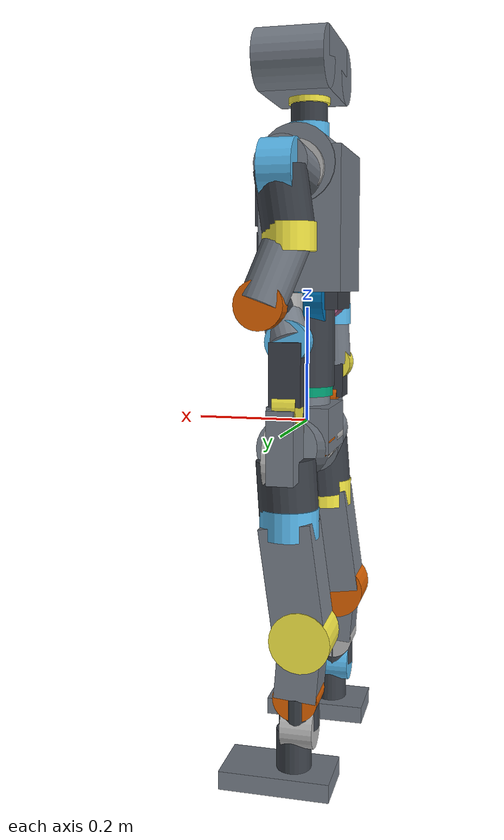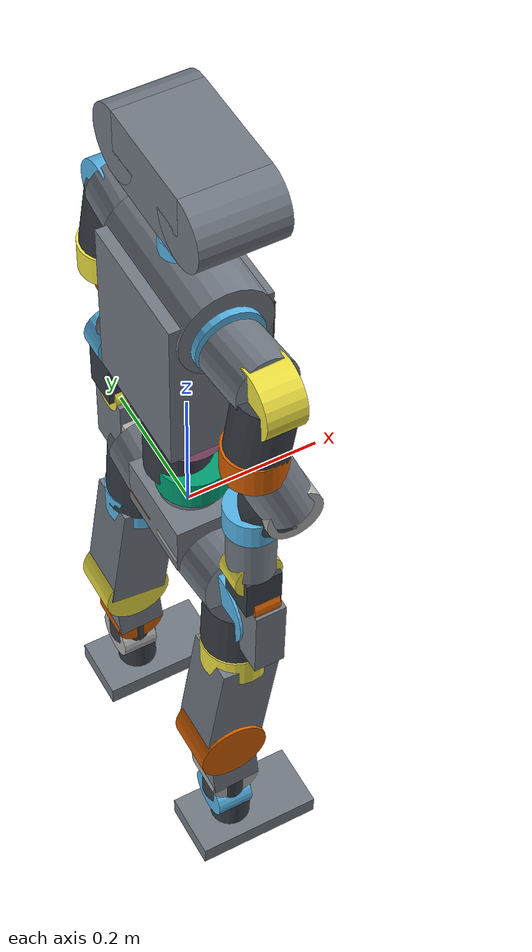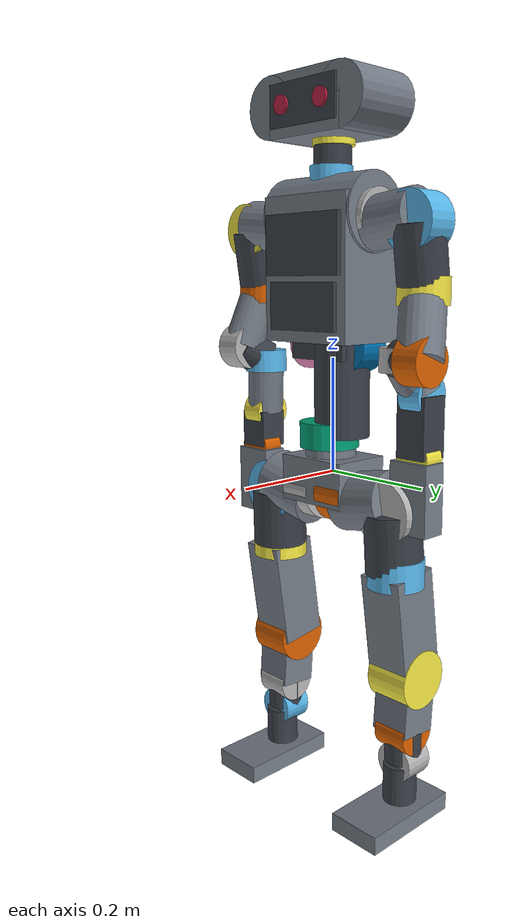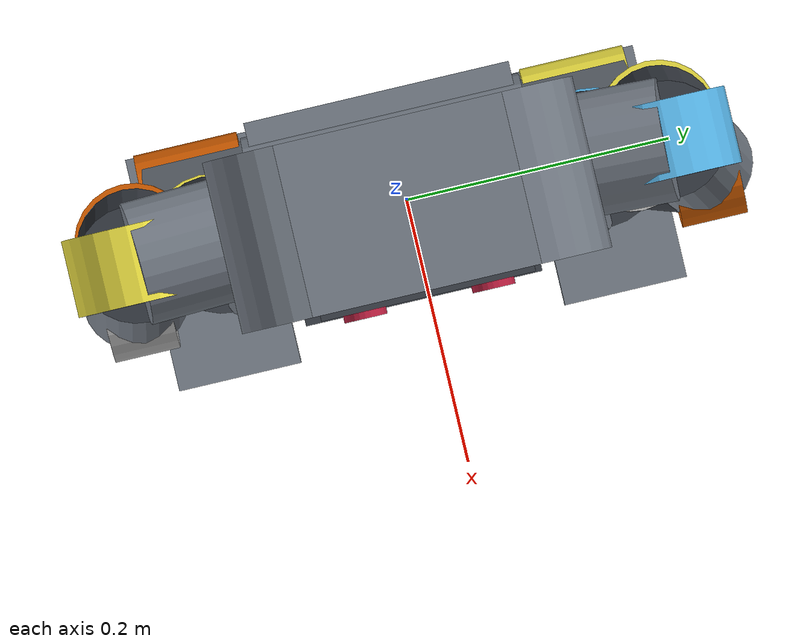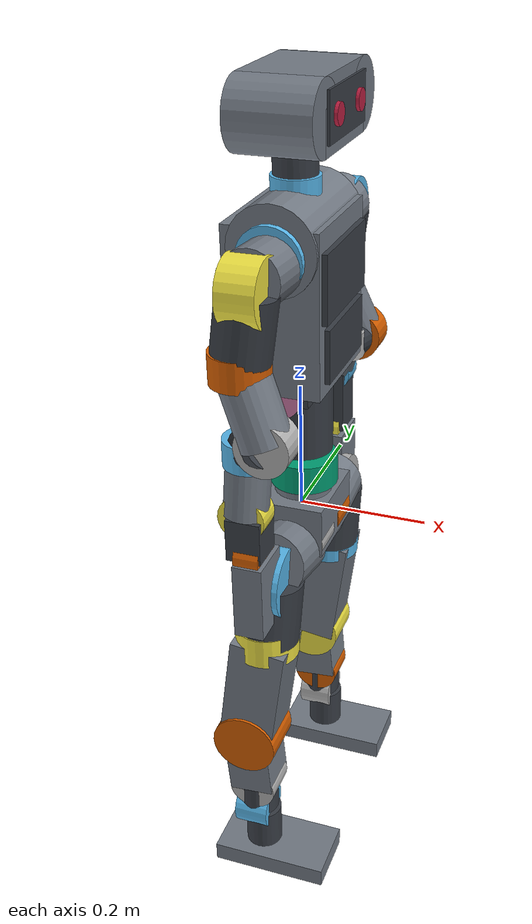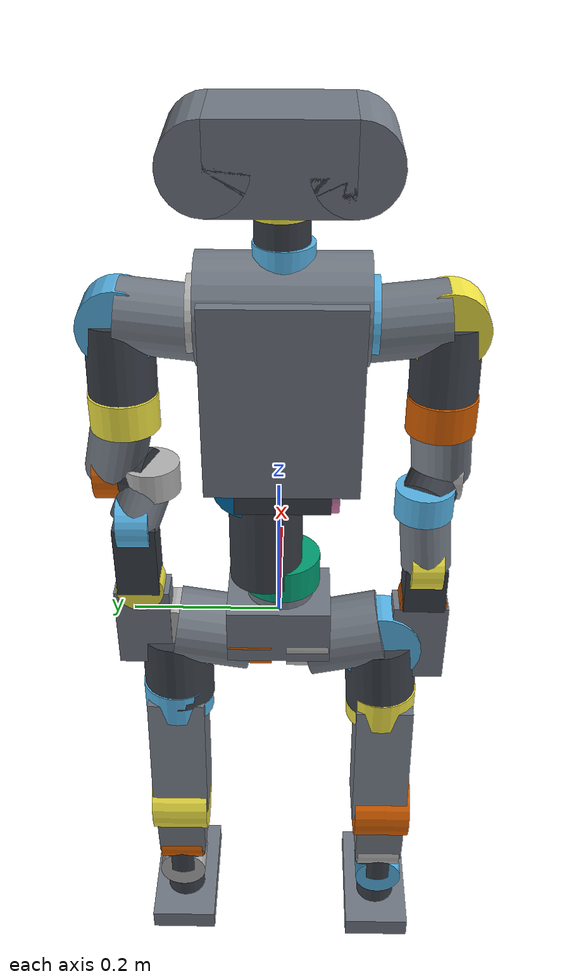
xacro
<?xml version="1.0"?>
<robot xmlns:xacro="http://www.ros.org/wiki/xacro" name="full_assmb">

  <mujoco>
    <compiler strippath="false" discardvisual="false" />
  </mujoco>

  <!-- Hardware manifest and ros2_control macros: urdf/ros2_control_macros.xacro.
       The launch file generates the manifest from config/joints.yaml. -->
  <xacro:include filename="ros2_control_macros.xacro"/>

  <!-- ==================== JOINT NAMING ==================== -->
  <xacro:property name="actuated_joint_names" value="${['left_shoulder_pitch', 'left_shoulder_roll', 'left_shoulder_yaw', 'left_elbow', 'left_forearm_yaw', 'left_wrist_pitch', 'left_wrist_roll', 'right_shoulder_pitch', 'right_shoulder_roll', 'right_shoulder_yaw', 'right_elbow', 'right_forearm_yaw', 'right_wrist_pitch', 'right_wrist_roll', 'left_hip_pitch', 'left_hip_roll', 'left_hip_yaw', 'left_knee', 'left_ankle_pitch', 'left_ankle_roll', 'right_hip_pitch', 'right_hip_roll', 'right_hip_yaw', 'right_knee', 'right_ankle_pitch', 'right_ankle_roll', 'torso_yaw', 'torso_roll', 'torso_pitch', 'head_yaw', 'head_pitch']}"/>

  <!-- ==================== MATERIALS ==================== -->
  <material name="cad_aluminum"><color rgba="0.68 0.70 0.73 1.0"/></material>
  <material name="shell_dark"><color rgba="0.45 0.48 0.52 1.0"/></material>
  <material name="arm_dark"><color rgba="0.22 0.24 0.27 1.0"/></material>
  <material name="accent_red"><color rgba="0.72 0.12 0.25 1.0"/></material>

  <!-- Macro that colors active EtherCAT joints red and mock joints dark gray -->
  <xacro:macro name="actuator_visual_hub" params="parent_link radius length rpy joint_idx">
    <link name="${parent_link}_hub">
      <visual>
        <origin xyz="0 0 0" rpy="${rpy}"/>
        <geometry><cylinder radius="${radius}" length="${length}"/></geometry>
        <material name="${'accent_red' if actuated_joint_names[int(joint_idx) - 1] in hw_names else 'arm_dark'}"/>
      </visual>
    </link>
    <joint name="${parent_link}_hub_fixed" type="fixed">
      <parent link="${parent_link}"/>
      <child link="${parent_link}_hub"/>
      <origin xyz="0 0 0" rpy="0 0 0"/>
    </joint>
  </xacro:macro>

  <!-- ==================== LINK: pelvis ==================== -->
  <link name="pelvis">
    <inertial>
      <origin xyz="0.00135144019 -0.000867692327 -0.0218788488" rpy="0 0 0"/>
      <mass value="3.3441746"/>
      <inertia ixx="0.0099193949" ixy="9.93110242e-05" ixz="1.02298577e-05" iyy="0.00708947808" iyz="-2.20920691e-05" izz="0.00877560221"/>
    </inertial>
    <visual>
      <origin xyz="0.002 0 -0.01" rpy="0 0 0"/>
      <geometry><box size="0.11 0.14 0.08"/></geometry>
      <material name="shell_dark"/>
    </visual>
    <visual>
      <origin xyz="0.004 -0.002 0.045" rpy="0 0 0"/>
      <geometry><cylinder radius="0.045" length="0.055"/></geometry>
      <material name="shell_dark"/>
    </visual>
    <collision>
      <origin xyz="0.002 0 -0.01" rpy="0 0 0"/>
      <geometry><box size="0.11 0.14 0.08"/></geometry>
    </collision>
  </link>

  <!-- ==================== LINK: torso_yaw_link (Joint 26) ==================== -->
  <link name="torso_yaw_link">
    <inertial>
      <origin xyz="0.0071610769 -0.000311877016 0.0253486518" rpy="0 0 0"/>
      <mass value="1.29787155"/>
      <inertia ixx="0.00271774684" ixy="4.63173551e-06" ixz="-0.000191215983" iyy="0.00294832905" iyz="1.43051997e-05" izz="0.00224623993"/>
    </inertial>
    <visual>
  <origin xyz="-0.0105 0.0204 0.0775" rpy="0 0 0"/>
  <geometry><cylinder radius="0.048" length="0.162"/></geometry>
  <material name="arm_dark"/>
</visual>
<collision>
  <origin xyz="-0.0105 0.0204 0.0775" rpy="0 0 0"/>
  <geometry><cylinder radius="0.048" length="0.162"/></geometry>
</collision>
  </link>
  <xacro:actuator_visual_hub parent_link="torso_yaw_link" radius="0.052" length="0.045" rpy="0 0 0" joint_idx="26"/>

  <!-- ==================== LINK: torso_roll_link (Joint 27) ==================== -->
  <link name="torso_roll_link">
    <inertial>
      <origin xyz="0.0050792044 -0.0249943939 0.0829546342" rpy="0 0 0"/>
      <mass value="2.1766299"/>
      <inertia ixx="0.0251292467" ixy="-0.000341218777" ixz="0.00207190506" iyy="0.0216832801" iyz="-0.00119301017" izz="0.0115066298"/>
    </inertial>
    <visual>
      <origin xyz="0 -0.043 0.02" rpy="0 0 0"/>
      <geometry><box size="0.10 0.12 0.09"/></geometry>
      <material name="arm_dark"/>
    </visual>
    <collision>
      <origin xyz="0 -0.043 0.02" rpy="0 0 0"/>
      <geometry><box size="0.10 0.12 0.09"/></geometry>
    </collision>
  </link>
  <xacro:actuator_visual_hub parent_link="torso_roll_link" radius="0.046" length="0.055" rpy="0 1.5708 0" joint_idx="27"/>

  <!-- ==================== LINK: torso (Joint 28) ==================== -->
  <link name="torso">
    <inertial>
      <origin xyz="0.00775933931 0.0230773074 0.106121937" rpy="0 0 0"/>
      <mass value="10.1109044"/>
      <inertia ixx="0.1160102" ixy="0.00145015298" ixz="0.00925740736" iyy="0.103810313" iyz="-0.00578745232" izz="0.0528225367"/>
    </inertial>
    <visual>
      <origin xyz="0.010 0.0439 0.125" rpy="0 0 0"/>
      <geometry><box size="0.14 0.19 0.24"/></geometry>
      <material name="shell_dark"/>
    </visual>
    <visual>
      <origin xyz="0.014 0.0439 0.215" rpy="1.5708 0 0"/>
      <geometry><cylinder radius="0.065" length="0.20"/></geometry>
      <material name="shell_dark"/>
    </visual>
    <visual>
      <origin xyz="0.0145 0.0430 0.255" rpy="0 0 0"/>
      <geometry><cylinder radius="0.035" length="0.06"/></geometry>
      <material name="shell_dark"/>
    </visual>
    <collision>
      <origin xyz="0.010 0.0439 0.125" rpy="0 0 0"/>
      <geometry><box size="0.14 0.19 0.24"/></geometry>
    </collision>
  </link>
  <xacro:actuator_visual_hub parent_link="torso" radius="0.046" length="0.055" rpy="1.5708 0 0" joint_idx="28"/>

  <link name="torso_trim_link">
    <visual>
      <origin xyz="0.082 0.0439 0.165" rpy="0 0 0"/>
      <geometry><box size="0.012 0.17 0.10"/></geometry>
      <material name="arm_dark"/>
    </visual>
    <visual>
      <origin xyz="0.082 0.0439 0.065" rpy="0 0 0"/>
      <geometry><box size="0.012 0.15 0.08"/></geometry>
      <material name="arm_dark"/>
    </visual>
  </link>
  <joint name="torso_trim_fixed" type="fixed">
    <parent link="torso"/>
    <child link="torso_trim_link"/>
    <origin xyz="0 0 0" rpy="0 0 0"/>
  </joint>

  <!-- ==================== LINK: head_yaw_link (Joint 29) ==================== -->
  <link name="head_yaw_link">
    <inertial>
      <origin xyz="-0.0212986181 -0.00220808899 -0.0019701607" rpy="0 0 0"/>
      <mass value="0.427035118"/>
      <inertia ixx="0.00143527713" ixy="2.24802452e-05" ixz="2.45759879e-05" iyy="0.000460095823" iyz="-1.50235836e-05" izz="0.00151713452"/>
    </inertial>
    <visual>
      <origin xyz="-0.001 0.002 0.0306" rpy="0 0 0"/>
      <geometry><cylinder radius="0.032" length="0.062"/></geometry>
      <material name="arm_dark"/>
    </visual>
    <collision>
      <origin xyz="-0.001 0.002 0.0306" rpy="0 0 0"/>
      <geometry><cylinder radius="0.032" length="0.062"/></geometry>
    </collision>
  </link>
  <xacro:actuator_visual_hub parent_link="head_yaw_link" radius="0.036" length="0.03" rpy="0 0 0" joint_idx="29"/>

  <!-- ==================== LINK: head (Joint 30) ==================== -->
  <link name="head">
    <inertial>
      <origin xyz="-0.00028095196 -0.00886941447 0.00973844358" rpy="0 0 0"/>
      <mass value="1.3791038"/>
      <inertia ixx="0.00689181604" ixy="8.02539198e-05" ixz="-0.000108831458" iyy="0.00855292846" iyz="1.00060424e-05" izz="0.00982967077"/>
    </inertial>
    <visual>
      <origin xyz="0.01 0 0.045" rpy="0 0 0"/>
      <geometry><box size="0.12 0.16 0.10"/></geometry>
      <material name="shell_dark"/>
    </visual>
    <visual>
      <origin xyz="0.01 0.08 0.045" rpy="0 1.5708 0"/>
      <geometry><cylinder radius="0.05" length="0.12"/></geometry>
      <material name="shell_dark"/>
    </visual>
    <visual>
      <origin xyz="0.01 -0.08 0.045" rpy="0 1.5708 0"/>
      <geometry><cylinder radius="0.05" length="0.12"/></geometry>
      <material name="shell_dark"/>
    </visual>
    <collision>
      <origin xyz="0.01 0 0.045" rpy="0 0 0"/>
      <geometry><box size="0.12 0.16 0.10"/></geometry>
    </collision>
  </link>
  <xacro:actuator_visual_hub parent_link="head" radius="0.036" length="0.03" rpy="0 0 0" joint_idx="30"/>

  <link name="head_visor_link">
    <visual>
      <origin xyz="0.071 0 0.045" rpy="0 0 0"/>
      <geometry><box size="0.006 0.15 0.068"/></geometry>
      <material name="arm_dark"/>
    </visual>
  </link>
  <joint name="head_visor_fixed" type="fixed">
    <parent link="head"/>
    <child link="head_visor_link"/>
    <origin xyz="0 0 0" rpy="0 0 0"/>
  </joint>

  <link name="head_eyes_link">
    <visual>
      <origin xyz="0.075 0.045 0.045" rpy="0 1.5708 0"/>
      <geometry><cylinder radius="0.015" length="0.008"/></geometry>
      <material name="accent_red"/>
    </visual>
    <visual>
      <origin xyz="0.075 -0.045 0.045" rpy="0 1.5708 0"/>
      <geometry><cylinder radius="0.015" length="0.008"/></geometry>
      <material name="accent_red"/>
    </visual>
  </link>
  <joint name="head_eyes_fixed" type="fixed">
    <parent link="head"/>
    <child link="head_eyes_link"/>
    <origin xyz="0 0 0" rpy="0 0 0"/>
  </joint>

  <!-- ==================== LEFT ARM LINKS ==================== -->

  <!-- LINK: left_shoulder_pitch_link (Joint 1) -->
  <link name="left_shoulder_pitch_link">
    <inertial>
      <origin xyz="8.11329397e-06 0.0134690594 0.00170145189" rpy="0 0 0"/>
      <mass value="0.919708281"/>
      <inertia ixx="0.00100827347" ixy="2.98577709e-09" ixz="2.40442334e-10" iyy="0.000921610803" iyz="-3.07703853e-05" izz="0.00102891925"/>
    </inertial>
    <visual>
      <origin xyz="0.0021 0.0544 -0.0053" rpy="1.667 0 -0.039"/>
      <geometry><cylinder radius="0.044" length="0.110"/></geometry>
      <material name="shell_dark"/>
    </visual>
    <collision>
      <origin xyz="0.0021 0.0544 -0.0053" rpy="1.667 0 -0.039"/>
      <geometry><cylinder radius="0.044" length="0.110"/></geometry>
    </collision>
  </link>
  <xacro:actuator_visual_hub parent_link="left_shoulder_pitch_link" radius="0.048" length="0.055" rpy="1.5708 0 0" joint_idx="1"/>

  <!-- LINK: left_shoulder_roll_link (Joint 2) -->
  <link name="left_shoulder_roll_link">
    <inertial>
      <origin xyz="-0.00475183471 -0.0100580619 -0.00881261853" rpy="0 0 0"/>
      <mass value="0.770586821"/>
      <inertia ixx="0.00121128237" ixy="8.63525933e-07" ixz="1.03437435e-05" iyy="0.00117995434" iyz="3.0758398e-05" izz="0.00119374891"/>
    </inertial>
    <visual>
      <origin xyz="-0.0076 0.0001 -0.0521" rpy="0 0.145 0"/>
      <geometry><cylinder radius="0.042" length="0.106"/></geometry>
      <material name="arm_dark"/>
    </visual>
    <collision>
      <origin xyz="-0.0076 0.0001 -0.0521" rpy="0 0.145 0"/>
      <geometry><cylinder radius="0.042" length="0.106"/></geometry>
    </collision>
  </link>
  <xacro:actuator_visual_hub parent_link="left_shoulder_roll_link" radius="0.048" length="0.055" rpy="0 1.5708 0" joint_idx="2"/>

  <!-- LINK: left_shoulder_yaw_link (Joint 3) -->
  <link name="left_shoulder_yaw_link">
    <inertial>
      <origin xyz="0.0192767007 -0.000125972824 -0.0397098337" rpy="0 0 0"/>
      <mass value="0.621805024"/>
      <inertia ixx="0.00189796511" ixy="-1.6383484e-09" ixz="9.05344671e-05" iyy="0.00212971261" iyz="5.26342737e-10" izz="0.00066640456"/>
    </inertial>
    <visual>
      <origin xyz="0.0192 0.0132 -0.0528" rpy="0.229 -0.348 0"/>
      <geometry><cylinder radius="0.038" length="0.115"/></geometry>
      <material name="shell_dark"/>
    </visual>
    <collision>
      <origin xyz="0.0192 0.0132 -0.0528" rpy="0.229 -0.348 0"/>
      <geometry><cylinder radius="0.038" length="0.115"/></geometry>
    </collision>
  </link>
  <xacro:actuator_visual_hub parent_link="left_shoulder_yaw_link" radius="0.043" length="0.045" rpy="0 0 0" joint_idx="3"/>

  <!-- LINK: left_elbow_link (Joint 4) -->
  <link name="left_elbow_link">
    <inertial>
      <origin xyz="-0.0019140819 -0.013235326 0.00586464447" rpy="0 0 0"/>
      <mass value="0.38394339"/>
      <inertia ixx="0.000243875" ixy="7.90016812e-06" ixz="5.43861518e-06" iyy="0.000245523455" iyz="-9.37205015e-06" izz="0.00018647038"/>
    </inertial>
    <visual>
      <origin xyz="-0.0083 -0.0244 -0.0007" rpy="-1.545 0 -0.327"/>
      <geometry><cylinder radius="0.035" length="0.052"/></geometry>
      <material name="arm_dark"/>
    </visual>
    <collision>
      <origin xyz="-0.0083 -0.0244 -0.0007" rpy="-1.545 0 -0.327"/>
      <geometry><cylinder radius="0.035" length="0.052"/></geometry>
    </collision>
  </link>
  <xacro:actuator_visual_hub parent_link="left_elbow_link" radius="0.040" length="0.048" rpy="1.5708 0 0" joint_idx="4"/>

  <!-- LINK: left_forearm_yaw_link (Joint 5) -->
  <link name="left_forearm_yaw_link">
    <inertial>
      <origin xyz="0.0105012778 0.00626218661 0.0029804655" rpy="0 0 0"/>
      <mass value="0.382858204"/>
      <inertia ixx="0.00024903944" ixy="2.1025687e-05" ixz="-9.30338073e-06" iyy="0.000238190065" iyz="3.28515867e-05" izz="0.000183474199"/>
    </inertial>
    <visual>
      <origin xyz="-0.0106 0.0116 -0.0283" rpy="0.366 0.359 0"/>
      <geometry><cylinder radius="0.033" length="0.065"/></geometry>
      <material name="shell_dark"/>
    </visual>
    <collision>
      <origin xyz="-0.0106 0.0116 -0.0283" rpy="0.366 0.359 0"/>
      <geometry><cylinder radius="0.033" length="0.065"/></geometry>
    </collision>
  </link>
  <xacro:actuator_visual_hub parent_link="left_forearm_yaw_link" radius="0.038" length="0.04" rpy="0 0 0" joint_idx="5"/>

  <!-- LINK: left_wrist_pitch_link (Joint 6) -->
  <link name="left_wrist_pitch_link">
    <inertial>
      <origin xyz="0.0172458511 -0.00102733159 0.0143828916" rpy="0 0 0"/>
      <mass value="0.449194847"/>
      <inertia ixx="0.000766599168" ixy="-5.44066698e-06" ixz="-9.11994983e-06" iyy="0.000755487168" iyz="1.82121453e-06" izz="0.000432809613"/>
    </inertial>
    <visual>
      <origin xyz="0.001 -0.0006 -0.051" rpy="0 0 0"/>
      <geometry><box size="0.052 0.056 0.102"/></geometry>
      <material name="arm_dark"/>
    </visual>
    <collision>
      <origin xyz="0.001 -0.0006 -0.051" rpy="0 0 0"/>
      <geometry><box size="0.052 0.056 0.102"/></geometry>
    </collision>
  </link>
  <xacro:actuator_visual_hub parent_link="left_wrist_pitch_link" radius="0.035" length="0.042" rpy="1.5708 0 0" joint_idx="6"/>

  <!-- LINK: left_hand (Joint 7) -->
  <link name="left_hand">
    <inertial>
      <origin xyz="0.00923745106 -0.00198239353 -0.154037792" rpy="0 0 0"/>
      <mass value="3.07534549"/>
      <inertia ixx="0.0351853133" ixy="2.70988185e-05" ixz="6.76734287e-05" iyy="0.0385974388" iyz="-0.00106665981" izz="0.00904590013"/>
    </inertial>
    <visual>
      <origin xyz="0.005 -0.001 -0.065" rpy="0 0 0"/>
      <geometry><box size="0.045 0.075 0.12"/></geometry>
      <material name="shell_dark"/>
    </visual>
    <collision>
      <origin xyz="0.005 -0.001 -0.065" rpy="0 0 0"/>
      <geometry><box size="0.045 0.075 0.12"/></geometry>
    </collision>
  </link>
  <xacro:actuator_visual_hub parent_link="left_hand" radius="0.032" length="0.038" rpy="0 1.5708 0" joint_idx="7"/>

  <!-- ==================== LEFT LEG LINKS ==================== -->

  <!-- LINK: left_hip_pitch_link (Joint 13) -->
  <link name="left_hip_pitch_link">
    <inertial>
      <origin xyz="1.4590771e-05 0.00723431008 0.0047576917" rpy="0 0 0"/>
      <mass value="1.59510734"/>
      <inertia ixx="0.00246484437" ixy="-5.38113812e-07" ixz="1.22770442e-06" iyy="0.00269065385" iyz="-3.03941244e-05" izz="0.00217901314"/>
    </inertial>
    <visual>
      <origin xyz="0.0008 0.0520 -0.0085" rpy="1.734 0 0"/>
      <geometry><cylinder radius="0.052" length="0.105"/></geometry>
      <material name="shell_dark"/>
    </visual>
    <collision>
      <origin xyz="0.0008 0.0520 -0.0085" rpy="1.734 0 0"/>
      <geometry><cylinder radius="0.052" length="0.105"/></geometry>
    </collision>
  </link>
  <xacro:actuator_visual_hub parent_link="left_hip_pitch_link" radius="0.056" length="0.058" rpy="1.5708 0 0" joint_idx="13"/>

  <!-- LINK: left_hip_roll_link (Joint 14) -->
  <link name="left_hip_roll_link">
    <inertial>
      <origin xyz="0.00539467897 -0.00571167928 -0.0245072206" rpy="0 0 0"/>
      <mass value="1.57903578"/>
      <inertia ixx="0.00490499007" ixy="-3.30508062e-05" ixz="0.000696100589" iyy="0.00476647228" iyz="9.75911376e-05" izz="0.00291471444"/>
    </inertial>
    <visual>
      <origin xyz="-0.0034 0.0018 -0.0529" rpy="0 0.064 0"/>
      <geometry><cylinder radius="0.050" length="0.106"/></geometry>
      <material name="arm_dark"/>
    </visual>
    <collision>
      <origin xyz="-0.0034 0.0018 -0.0529" rpy="0 0.064 0"/>
      <geometry><cylinder radius="0.050" length="0.106"/></geometry>
    </collision>
  </link>
  <xacro:actuator_visual_hub parent_link="left_hip_roll_link" radius="0.056" length="0.058" rpy="0 1.5708 0" joint_idx="14"/>

  <!-- LINK: left_hip_yaw_link (Joint 15) -->
  <link name="left_hip_yaw_link">
    <inertial>
      <origin xyz="-0.00931490414 -0.000404987435 0.0199591117" rpy="0 0 0"/>
      <mass value="1.68516217"/>
      <inertia ixx="0.00508116064" ixy="-1.05977184e-05" ixz="0.000901262554" iyy="0.00548147432" iyz="3.20033825e-05" izz="0.00233027208"/>
    </inertial>
    <visual>
      <origin xyz="-0.0133 0.0016 -0.0965" rpy="0 0.137 0"/>
      <geometry><box size="0.088 0.082 0.195"/></geometry>
      <material name="shell_dark"/>
    </visual>
    <collision>
      <origin xyz="-0.0133 0.0016 -0.0965" rpy="0 0.137 0"/>
      <geometry><box size="0.088 0.082 0.195"/></geometry>
    </collision>
  </link>
  <xacro:actuator_visual_hub parent_link="left_hip_yaw_link" radius="0.050" length="0.050" rpy="0 0 0" joint_idx="15"/>

  <!-- LINK: left_knee_link (Joint 16) -->
  <link name="left_knee_link">
    <inertial>
      <origin xyz="0.00337077484 0.00140821301 0.0403923841" rpy="0 0 0"/>
      <mass value="1.42310553"/>
      <inertia ixx="0.00707164711" ixy="-3.14309604e-06" ixz="-2.82878795e-06" iyy="0.00712125762" iyz="2.62964092e-05" izz="0.00233915893"/>
    </inertial>
    <visual>
      <origin xyz="0.0042 0.0018 -0.0502" rpy="0 -0.083 0"/>
      <geometry><box size="0.072 0.072 0.102"/></geometry>
      <material name="shell_dark"/>
    </visual>
    <collision>
      <origin xyz="0.0042 0.0018 -0.0502" rpy="0 -0.083 0"/>
      <geometry><box size="0.072 0.072 0.102"/></geometry>
    </collision>
  </link>
  <xacro:actuator_visual_hub parent_link="left_knee_link" radius="0.052" length="0.082" rpy="1.5708 0 0" joint_idx="16"/>

  <!-- LINK: left_ankle_pitch_link (Joint 17) -->
  <link name="left_ankle_pitch_link">
    <inertial>
      <origin xyz="0.00678134486 -0.00438370713 0.0101578228" rpy="0 0 0"/>
      <mass value="0.539081888"/>
      <inertia ixx="0.000632963635" ixy="5.03842374e-05" ixz="5.63012332e-05" iyy="0.000617434105" iyz="-2.83840102e-05" izz="0.000640971385"/>
    </inertial>
    <visual>
      <origin xyz="-0.0011 0.0008 -0.0285" rpy="0 0 0"/>
      <geometry><cylinder radius="0.034" length="0.058"/></geometry>
      <material name="arm_dark"/>
    </visual>
    <collision>
      <origin xyz="-0.0011 0.0008 -0.0285" rpy="0 0 0"/>
      <geometry><cylinder radius="0.034" length="0.058"/></geometry>
    </collision>
  </link>
  <xacro:actuator_visual_hub parent_link="left_ankle_pitch_link" radius="0.038" length="0.065" rpy="1.5708 0 0" joint_idx="17"/>

  <!-- LINK: left_ankle_roll_link (Joint 18) -->
  <link name="left_ankle_roll_link">
    <inertial>
      <origin xyz="0.0406188106 -0.000595538579 -0.0902876715" rpy="0 0 0"/>
      <mass value="2.33019653"/>
      <inertia ixx="0.0225859622" ixy="-0.000100634999" ixz="0.00381668221" iyy="0.0273813493" iyz="0.000355281798" izz="0.00831012806"/>
    </inertial>
    <visual>
      <origin xyz="0.01 0 -0.045" rpy="0 0 0"/>
      <geometry><cylinder radius="0.030" length="0.08"/></geometry>
      <material name="arm_dark"/>
    </visual>
    <visual>
      <origin xyz="0.035 0 -0.090" rpy="0 0 0"/>
      <geometry><box size="0.19 0.10 0.032"/></geometry>
      <material name="shell_dark"/>
    </visual>
    <collision>
      <origin xyz="0.035 0 -0.090" rpy="0 0 0"/>
      <geometry><box size="0.19 0.10 0.032"/></geometry>
    </collision>
  </link>
  <xacro:actuator_visual_hub parent_link="left_ankle_roll_link" radius="0.036" length="0.055" rpy="0 1.5708 0" joint_idx="18"/>

  <!-- ==================== RIGHT ARM LINKS ==================== -->

  <!-- LINK: right_shoulder_pitch_link (Joint 8) -->
  <link name="right_shoulder_pitch_link">
    <inertial>
      <origin xyz="8.12362068e-06 -0.0134690666 0.00170144772" rpy="0 0 0"/>
      <mass value="0.919708281"/>
      <inertia ixx="0.00100827362" ixy="-2.57300659e-09" ixz="1.75164943e-10" iyy="0.000921610825" iyz="3.07702399e-05" izz="0.00102891957"/>
    </inertial>
    <visual>
      <origin xyz="0.0021 -0.0544 -0.0053" rpy="-1.667 0 0.039"/>
      <geometry><cylinder radius="0.044" length="0.110"/></geometry>
      <material name="shell_dark"/>
    </visual>
    <collision>
      <origin xyz="0.0021 -0.0544 -0.0053" rpy="-1.667 0 0.039"/>
      <geometry><cylinder radius="0.044" length="0.110"/></geometry>
    </collision>
  </link>
  <xacro:actuator_visual_hub parent_link="right_shoulder_pitch_link" radius="0.048" length="0.055" rpy="1.5708 0 0" joint_idx="8"/>

  <!-- LINK: right_shoulder_roll_link (Joint 9) -->
  <link name="right_shoulder_roll_link">
    <inertial>
      <origin xyz="-0.00475186969 0.0100581566 -0.00881256839" rpy="0 0 0"/>
      <mass value="0.770586821"/>
      <inertia ixx="0.00121128699" ixy="-8.63095798e-07" ixz="1.03433146e-05" iyy="0.00117996048" iyz="-3.07579759e-05" izz="0.00119375755"/>
    </inertial>
    <visual>
      <origin xyz="-0.0076 -0.0001 -0.0521" rpy="0 0.145 0"/>
      <geometry><cylinder radius="0.042" length="0.106"/></geometry>
      <material name="arm_dark"/>
    </visual>
    <collision>
      <origin xyz="-0.0076 -0.0001 -0.0521" rpy="0 0.145 0"/>
      <geometry><cylinder radius="0.042" length="0.106"/></geometry>
    </collision>
  </link>
  <xacro:actuator_visual_hub parent_link="right_shoulder_roll_link" radius="0.048" length="0.055" rpy="0 1.5708 0" joint_idx="9"/>

  <!-- LINK: right_shoulder_yaw_link (Joint 10) -->
  <link name="right_shoulder_yaw_link">
    <inertial>
      <origin xyz="0.0193177305 0.000196081409 -0.0397287266" rpy="0 0 0"/>
      <mass value="0.622637368"/>
      <inertia ixx="0.00189910538" ixy="-8.49587391e-07" ixz="9.06860299e-05" iyy="0.00212992424" iyz="3.97172281e-07" izz="0.000668089481"/>
    </inertial>
    <visual>
      <origin xyz="0.0198 -0.0060 -0.0515" rpy="-0.108 -0.367 0"/>
      <geometry><cylinder radius="0.038" length="0.111"/></geometry>
      <material name="shell_dark"/>
    </visual>
    <collision>
      <origin xyz="0.0198 -0.0060 -0.0515" rpy="-0.108 -0.367 0"/>
      <geometry><cylinder radius="0.038" length="0.111"/></geometry>
    </collision>
  </link>
  <xacro:actuator_visual_hub parent_link="right_shoulder_yaw_link" radius="0.043" length="0.045" rpy="0 0 0" joint_idx="10"/>

  <!-- LINK: right_elbow_link (Joint 11) -->
  <link name="right_elbow_link">
    <inertial>
      <origin xyz="-0.0020387835 0.0103777322 0.00349728488" rpy="0 0 0"/>
      <mass value="0.398484058"/>
      <inertia ixx="0.000348832439" ixy="-4.36850743e-06" ixz="1.07644777e-05" iyy="0.000247064709" iyz="2.15956115e-05" izz="0.000276869834"/>
    </inertial>
    <visual>
      <origin xyz="-0.0176 0.0110 -0.0130" rpy="0.432 0.934 0"/>
      <geometry><cylinder radius="0.035" length="0.049"/></geometry>
      <material name="arm_dark"/>
    </visual>
    <collision>
      <origin xyz="-0.0176 0.0110 -0.0130" rpy="0.432 0.934 0"/>
      <geometry><cylinder radius="0.035" length="0.049"/></geometry>
    </collision>
  </link>
  <xacro:actuator_visual_hub parent_link="right_elbow_link" radius="0.040" length="0.048" rpy="1.5708 0 0" joint_idx="11"/>

  <!-- LINK: right_forearm_yaw_link (Joint 12) -->
  <link name="right_forearm_yaw_link">
    <inertial>
      <origin xyz="0.0135344625 -0.00974630844 -0.0144317347" rpy="0 0 0"/>
      <mass value="0.428079687"/>
      <inertia ixx="0.000636600094" ixy="2.96855178e-06" ixz="-7.33223716e-06" iyy="0.000629461823" iyz="-4.04232605e-08" izz="0.000420355755"/>
    </inertial>
    <visual>
      <origin xyz="-0.0023 -0.0047 -0.0481" rpy="-0.098 0.048 0"/>
      <geometry><cylinder radius="0.033" length="0.097"/></geometry>
      <material name="shell_dark"/>
    </visual>
    <collision>
      <origin xyz="-0.0023 -0.0047 -0.0481" rpy="-0.098 0.048 0"/>
      <geometry><cylinder radius="0.033" length="0.097"/></geometry>
    </collision>
  </link>
  <xacro:actuator_visual_hub parent_link="right_forearm_yaw_link" radius="0.038" length="0.04" rpy="0 0 0" joint_idx="12"/>

  <!-- LINK: right_wrist_pitch_link (Joint 24) -->
  <link name="right_wrist_pitch_link">
    <inertial>
      <origin xyz="0.0097906957 -0.00578405802 -0.00180019416" rpy="0 0 0"/>
      <mass value="0.396147169"/>
      <inertia ixx="0.000370711235" ixy="6.73159956e-06" ixz="6.47722082e-06" iyy="0.000327605832" iyz="-1.19337322e-05" izz="0.000358810288"/>
    </inertial>
    <visual>
      <origin xyz="0.0044 -0.0004 -0.0328" rpy="0 0 0"/>
      <geometry><box size="0.052 0.056 0.066"/></geometry>
      <material name="arm_dark"/>
    </visual>
    <collision>
      <origin xyz="0.0044 -0.0004 -0.0328" rpy="0 0 0"/>
      <geometry><box size="0.052 0.056 0.066"/></geometry>
    </collision>
  </link>
  <xacro:actuator_visual_hub parent_link="right_wrist_pitch_link" radius="0.035" length="0.042" rpy="1.5708 0 0" joint_idx="24"/>

  <!-- LINK: right_hand (Joint 25) -->
  <link name="right_hand">
    <inertial>
      <origin xyz="0.00346453404 0.00247591415 -0.130102173" rpy="0 0 0"/>
      <mass value="3.03521412"/>
      <inertia ixx="0.0344466268" ixy="-2.62975299e-05" ixz="-3.0254911e-05" iyy="0.0378056041" iyz="0.00101351491" izz="0.00894915313"/>
    </inertial>
    <visual>
      <origin xyz="0.003 0.002 -0.065" rpy="0 0 0"/>
      <geometry><box size="0.045 0.075 0.12"/></geometry>
      <material name="shell_dark"/>
    </visual>
    <collision>
      <origin xyz="0.003 0.002 -0.065" rpy="0 0 0"/>
      <geometry><box size="0.045 0.075 0.12"/></geometry>
    </collision>
  </link>
  <xacro:actuator_visual_hub parent_link="right_hand" radius="0.032" length="0.038" rpy="0 1.5708 0" joint_idx="25"/>

  <!-- ==================== RIGHT LEG LINKS ==================== -->

  <!-- LINK: right_hip_pitch_link (Joint 19) -->
  <link name="right_hip_pitch_link">
    <inertial>
      <origin xyz="-0.00266643975 -0.00730600317 0.00479095937" rpy="0 0 0"/>
      <mass value="1.61783635"/>
      <inertia ixx="0.00246757294" ixy="-1.33287675e-06" ixz="5.81158249e-05" iyy="0.0028539271" iyz="1.75419424e-05" izz="0.00233630086"/>
    </inertial>
    <visual>
      <origin xyz="-0.0001 -0.0514 -0.0114" rpy="-1.789 0 0"/>
      <geometry><cylinder radius="0.052" length="0.105"/></geometry>
      <material name="shell_dark"/>
    </visual>
    <collision>
      <origin xyz="-0.0001 -0.0514 -0.0114" rpy="-1.789 0 0"/>
      <geometry><cylinder radius="0.052" length="0.105"/></geometry>
    </collision>
  </link>
  <xacro:actuator_visual_hub parent_link="right_hip_pitch_link" radius="0.056" length="0.058" rpy="1.5708 0 0" joint_idx="19"/>

  <!-- LINK: right_hip_roll_link (Joint 20) -->
  <link name="right_hip_roll_link">
    <inertial>
      <origin xyz="0.00565788667 0.00492290455 -0.0250676351" rpy="0 0 0"/>
      <mass value="1.57903578"/>
      <inertia ixx="0.00495382005" ixy="5.43768789e-05" ixz="0.000710998633" iyy="0.00483700084" iyz="-0.000120482958" izz="0.00290654174"/>
    </inertial>
    <visual>
      <origin xyz="-0.0036 -0.0031 -0.0528" rpy="-0.059 0.069 0"/>
      <geometry><cylinder radius="0.050" length="0.106"/></geometry>
      <material name="arm_dark"/>
    </visual>
    <collision>
      <origin xyz="-0.0036 -0.0031 -0.0528" rpy="-0.059 0.069 0"/>
      <geometry><cylinder radius="0.050" length="0.106"/></geometry>
    </collision>
  </link>
  <xacro:actuator_visual_hub parent_link="right_hip_roll_link" radius="0.056" length="0.058" rpy="0 1.5708 0" joint_idx="20"/>

  <!-- LINK: right_hip_yaw_link (Joint 21) -->
  <link name="right_hip_yaw_link">
    <inertial>
      <origin xyz="-0.00934532521 0.000938222795 0.0201506247" rpy="0 0 0"/>
      <mass value="1.68516217"/>
      <inertia ixx="0.0051688889" ixy="2.34542775e-05" ixz="0.000905000869" iyy="0.00554586253" iyz="-7.10406937e-05" izz="0.00235201406"/>
    </inertial>
    <visual>
      <origin xyz="-0.0136 -0.0046 -0.0965" rpy="0 0.140 0"/>
      <geometry><box size="0.088 0.082 0.195"/></geometry>
      <material name="shell_dark"/>
    </visual>
    <collision>
      <origin xyz="-0.0136 -0.0046 -0.0965" rpy="0 0.140 0"/>
      <geometry><box size="0.088 0.082 0.195"/></geometry>
    </collision>
  </link>
  <xacro:actuator_visual_hub parent_link="right_hip_yaw_link" radius="0.050" length="0.050" rpy="0 0 0" joint_idx="21"/>

  <!-- LINK: right_knee_link (Joint 22) -->
  <link name="right_knee_link">
    <inertial>
      <origin xyz="0.00361711235 0.00296643991 0.040766288" rpy="0 0 0"/>
      <mass value="2.50187198"/>
      <inertia ixx="0.0126007033" ixy="6.3672664e-07" ixz="-1.19952615e-05" iyy="0.0126446159" iyz="6.51368758e-06" izz="0.0042100581"/>
    </inertial>
    <visual>
      <origin xyz="0.0041 -0.0005 -0.0502" rpy="0 -0.081 0"/>
      <geometry><box size="0.072 0.072 0.102"/></geometry>
      <material name="shell_dark"/>
    </visual>
    <collision>
      <origin xyz="0.0041 -0.0005 -0.0502" rpy="0 -0.081 0"/>
      <geometry><box size="0.072 0.072 0.102"/></geometry>
    </collision>
  </link>
  <xacro:actuator_visual_hub parent_link="right_knee_link" radius="0.052" length="0.082" rpy="1.5708 0 0" joint_idx="22"/>

  <!-- LINK: right_ankle_pitch_link (Joint 23) -->
  <link name="right_ankle_pitch_link">
    <inertial>
      <origin xyz="0.0044308082 0.00114504685 0.0114820846" rpy="0 0 0"/>
      <mass value="0.533267633"/>
      <inertia ixx="0.00060692387" ixy="2.71302511e-06" ixz="5.12661757e-05" iyy="0.000590078491" iyz="-8.05453421e-06" izz="0.000582162076"/>
    </inertial>
    <visual>
      <origin xyz="-0.0012 -0.0014 -0.0284" rpy="0 0 0"/>
      <geometry><cylinder radius="0.034" length="0.058"/></geometry>
      <material name="arm_dark"/>
    </visual>
    <collision>
      <origin xyz="-0.0012 -0.0014 -0.0284" rpy="0 0 0"/>
      <geometry><cylinder radius="0.034" length="0.058"/></geometry>
    </collision>
  </link>
  <xacro:actuator_visual_hub parent_link="right_ankle_pitch_link" radius="0.038" length="0.065" rpy="1.5708 0 0" joint_idx="23"/>

  <!-- LINK: right_ankle_roll_link (Joint 31) -->
  <link name="right_ankle_roll_link">
    <inertial>
      <origin xyz="0.00253691743 -0.0055715058 -0.125936832" rpy="0 0 0"/>
      <mass value="2.33872821"/>
      <inertia ixx="0.033693357" ixy="5.58074076e-07" ixz="0.000134703214" iyy="0.0359377202" iyz="-0.00153512561" izz="0.00633709522"/>
    </inertial>
    <visual>
      <origin xyz="0.01 0 -0.045" rpy="0 0 0"/>
      <geometry><cylinder radius="0.030" length="0.08"/></geometry>
      <material name="arm_dark"/>
    </visual>
    <visual>
      <origin xyz="0.035 0 -0.090" rpy="0 0 0"/>
      <geometry><box size="0.19 0.10 0.032"/></geometry>
      <material name="shell_dark"/>
    </visual>
    <collision>
      <origin xyz="0.035 0 -0.090" rpy="0 0 0"/>
      <geometry><box size="0.19 0.10 0.032"/></geometry>
    </collision>
  </link>
  <xacro:actuator_visual_hub parent_link="right_ankle_roll_link" radius="0.036" length="0.055" rpy="0 1.5708 0" joint_idx="31"/>

  <!-- ==================== JOINTS (kinematic definitions) ==================== -->
  <joint name="torso_yaw" type="revolute">
    <parent link="pelvis"/>
    <child link="torso_yaw_link"/>
    <origin xyz="0.00636555507 -0.00321322445 0.0679696882" rpy="0 0 0"/>
    <axis xyz="0.04623328 -0.0280996722 0.998535374"/>
    <limit lower="-2.61799388" upper="2.61799388" effort="120" velocity="16.5457213"/>
    <dynamics damping="0.05" friction="0.02"/>
  </joint>

  <joint name="torso_roll" type="revolute">
    <parent link="torso_yaw_link"/>
    <child link="torso_roll_link"/>
    <origin xyz="-0.0209575119 0.0408893559 0.155092898" rpy="0 0 0"/>
    <axis xyz="1 0 0"/>
    <limit lower="-0.523598776" upper="0.523598776" effort="60" velocity="18.4306769"/>
    <dynamics damping="0.05" friction="0.02"/>
  </joint>

  <joint name="torso_pitch" type="revolute">
    <parent link="torso_roll_link"/>
    <child link="torso"/>
    <origin xyz="-0.000295023952 -0.085949761 0.00035057267" rpy="0 0 0"/>
    <axis xyz="-0.0620812167 -0.715242271 0.696113795"/>
    <limit lower="-0.523598776" upper="0.523598776" effort="60" velocity="18.4306769"/>
    <dynamics damping="0.05" friction="0.02"/>
  </joint>

  <joint name="head_yaw" type="revolute">
    <parent link="torso"/>
    <child link="head_yaw_link"/>
    <origin xyz="0.014575924 0.0429766259 0.278413476" rpy="0 0 0"/>
    <axis xyz="-0.0370071702 3.9649444e-05 0.999314999"/>
    <limit lower="-1.74532925" upper="1.74532925" effort="10" velocity="33.1961624"/>
    <dynamics damping="0.05" friction="0.02"/>
  </joint>

  <joint name="head_pitch" type="revolute">
    <parent link="head_yaw_link"/>
    <child link="head"/>
    <origin xyz="-0.00198355571 0.00398669749 0.0612980195" rpy="0 0 0"/>
    <axis xyz="-0.0553849983 -0.998463047 -0.00201126829"/>
    <limit lower="-0.436332313" upper="0.261799388" effort="10" velocity="33.1961624"/>
    <dynamics damping="0.05" friction="0.02"/>
  </joint>

  <joint name="left_shoulder_pitch" type="revolute">
    <parent link="torso"/>
    <child link="left_shoulder_pitch_link"/>
    <origin xyz="0.0139331928 0.126401994 0.20558559" rpy="0 0 0"/>
    <axis xyz="0 -1 0"/>
    <limit lower="-2.35619449" upper="3.14159265" effort="60" velocity="18.4306769"/>
    <dynamics damping="0.05" friction="0.02"/>
  </joint>

  <joint name="left_shoulder_roll" type="revolute">
    <parent link="left_shoulder_pitch_link"/>
    <child link="left_shoulder_roll_link"/>
    <origin xyz="0.00429292317 0.108883521 -0.0105454686" rpy="0 0 0"/>
    <axis xyz="1 0 0"/>
    <limit lower="-0.436332313" upper="2.96705973" effort="60" velocity="18.4306769"/>
    <dynamics damping="0.05" friction="0.02"/>
  </joint>

  <joint name="left_shoulder_yaw" type="revolute">
    <parent link="left_shoulder_roll_link"/>
    <child link="left_shoulder_yaw_link"/>
    <origin xyz="-0.0151713136 0.000134426803 -0.104213021" rpy="0 0 0"/>
    <axis xyz="0 0 -1"/>
    <limit lower="-2.61799388" upper="2.61799388" effort="34" velocity="11.6238928"/>
    <dynamics damping="0.05" friction="0.02"/>
  </joint>

  <joint name="left_elbow" type="revolute">
    <parent link="left_shoulder_yaw_link"/>
    <child link="left_elbow_link"/>
    <origin xyz="0.0383865125 0.026452651 -0.105696609" rpy="0 0 0"/>
    <axis xyz="-1.06190355e-06 -1 2.52964135e-06"/>
    <limit lower="0" upper="2.61799388" effort="34" velocity="11.6238928"/>
    <dynamics damping="0.05" friction="0.02"/>
  </joint>

  <joint name="left_forearm_yaw" type="revolute">
    <parent link="left_elbow_link"/>
    <child link="left_forearm_yaw_link"/>
    <origin xyz="-0.0165338608 -0.0487989964 -0.00131505099" rpy="0 0 0"/>
    <axis xyz="0 0 -1"/>
    <limit lower="-2.61799388" upper="2.61799388" effort="34" velocity="11.6238928"/>
    <dynamics damping="0.05" friction="0.02"/>
  </joint>

  <joint name="left_wrist_pitch" type="revolute">
    <parent link="left_forearm_yaw_link"/>
    <child link="left_wrist_pitch_link"/>
    <origin xyz="-0.0212732868 0.0231118161 -0.0565740298" rpy="0 0 0"/>
    <axis xyz="0.771603712 -0.527424038 0.355600332"/>
    <limit lower="-0.610865238" upper="0.610865238" effort="34" velocity="11.6238928"/>
    <dynamics damping="0.05" friction="0.02"/>
  </joint>

  <joint name="left_wrist_roll" type="revolute">
    <parent link="left_wrist_pitch_link"/>
    <child link="left_hand"/>
    <origin xyz="0.00200525917 -0.00126990681 -0.102134053" rpy="0 0 0"/>
    <axis xyz="0.553058563 -0.802373185 0.224328994"/>
    <limit lower="-1.57079633" upper="1.57079633" effort="10" velocity="33.1961624"/>
    <dynamics damping="0.05" friction="0.02"/>
  </joint>

  <joint name="left_hip_pitch" type="revolute">
    <parent link="pelvis"/>
    <child link="left_hip_pitch_link"/>
    <origin xyz="0.00276796619 0.0385791844 -0.0287110628" rpy="0 0 0"/>
    <axis xyz="-0.00690845697 -0.999406368 -0.0337518187"/>
    <limit lower="-2.7925268" upper="2.7925268" effort="120" velocity="16.5457213"/>
    <dynamics damping="0.05" friction="0.02"/>
  </joint>

  <joint name="left_hip_roll" type="revolute">
    <parent link="left_hip_pitch_link"/>
    <child link="left_hip_roll_link"/>
    <origin xyz="0.00154613403 0.103900396 -0.0170966816" rpy="0 0 0"/>
    <axis xyz="0.998991781 -0.00190474533 -0.0448530223"/>
    <limit lower="-0.610865238" upper="2.7925268" effort="120" velocity="16.5457213"/>
    <dynamics damping="0.05" friction="0.02"/>
  </joint>

  <joint name="left_hip_yaw" type="revolute">
    <parent link="left_hip_roll_link"/>
    <child link="left_hip_yaw_link"/>
    <origin xyz="-0.00681927811 0.00367694871 -0.105817772" rpy="0 0 0"/>
    <axis xyz="-0.0419469094 0.127467984 -0.990955281"/>
    <limit lower="-2.75762022" upper="2.75762022" effort="60" velocity="18.4306769"/>
    <dynamics damping="0.05" friction="0.02"/>
  </joint>

  <joint name="left_knee" type="revolute">
    <parent link="left_hip_yaw_link"/>
    <child link="left_knee_link"/>
    <origin xyz="-0.0266400691 0.00320066073 -0.193046838" rpy="0 0 0"/>
    <axis xyz="-0.0130737122 -0.999633712 -0.0236964034"/>
    <limit lower="-0.0872664626" upper="2.7925268" effort="120" velocity="16.5457213"/>
    <dynamics damping="0.05" friction="0.02"/>
  </joint>

  <joint name="left_ankle_pitch" type="revolute">
    <parent link="left_knee_link"/>
    <child link="left_ankle_pitch_link"/>
    <origin xyz="0.00837472016 0.0036605513 -0.100324083" rpy="0 0 0"/>
    <axis xyz="-0.0091873471 -0.997178714 -0.0744996946"/>
    <limit lower="-0.610865238" upper="0.785398163" effort="34" velocity="11.6238928"/>
    <dynamics damping="0.05" friction="0.02"/>
  </joint>

  <joint name="left_ankle_roll" type="revolute">
    <parent link="left_ankle_pitch_link"/>
    <child link="left_ankle_roll_link"/>
    <origin xyz="-0.00225798316 0.00156019891 -0.0569338853" rpy="0 0 0"/>
    <axis xyz="1 0 0"/>
    <limit lower="-0.261799388" upper="0.261799388" effort="34" velocity="11.6238928"/>
    <dynamics damping="0.05" friction="0.02"/>
  </joint>

  <joint name="right_shoulder_pitch" type="revolute">
    <parent link="torso"/>
    <child link="right_shoulder_pitch_link"/>
    <origin xyz="0.0139325887 -0.0386145074 0.205585592" rpy="0 0 0"/>
    <axis xyz="0 -1 0"/>
    <limit lower="-2.35619449" upper="3.14159265" effort="60" velocity="18.4306769"/>
    <dynamics damping="0.05" friction="0.02"/>
  </joint>

  <joint name="right_shoulder_roll" type="revolute">
    <parent link="right_shoulder_pitch_link"/>
    <child link="right_shoulder_roll_link"/>
    <origin xyz="0.00429213873 -0.108883546 -0.010545467" rpy="0 0 0"/>
    <axis xyz="-1 0 0"/>
    <limit lower="-0.436332313" upper="2.96705973" effort="60" velocity="18.4306769"/>
    <dynamics damping="0.05" friction="0.02"/>
  </joint>

  <joint name="right_shoulder_yaw" type="revolute">
    <parent link="right_shoulder_roll_link"/>
    <child link="right_shoulder_yaw_link"/>
    <origin xyz="-0.0151713128 -0.000134325087 -0.104213021" rpy="0 0 0"/>
    <axis xyz="0 0 1"/>
    <limit lower="-2.61799388" upper="2.61799388" effort="34" velocity="11.6238928"/>
    <dynamics damping="0.05" friction="0.02"/>
  </joint>

  <joint name="right_elbow" type="revolute">
    <parent link="right_shoulder_yaw_link"/>
    <child link="right_elbow_link"/>
    <origin xyz="0.0396245408 -0.0119715142 -0.103008434" rpy="0 0 0"/>
    <axis xyz="0.417908105 -0.432053594 0.799176143"/>
    <limit lower="0" upper="2.61799388" effort="34" velocity="11.6238928"/>
    <dynamics damping="0.05" friction="0.02"/>
  </joint>

  <joint name="right_forearm_yaw" type="revolute">
    <parent link="right_elbow_link"/>
    <child link="right_forearm_yaw_link"/>
    <origin xyz="-0.0352065744 0.0220382163 -0.026035285" rpy="0 0 0"/>
    <axis xyz="0.0976383746 -0.832160937 0.545870793"/>
    <limit lower="-2.61799388" upper="2.61799388" effort="34" velocity="11.6238928"/>
    <dynamics damping="0.05" friction="0.02"/>
  </joint>

  <joint name="right_wrist_pitch" type="revolute">
    <parent link="right_forearm_yaw_link"/>
    <child link="right_wrist_pitch_link"/>
    <origin xyz="-0.00459369115 -0.00944520127 -0.0962608459" rpy="0 0 0"/>
    <axis xyz="-0.627312927 -0.725743757 0.282443782"/>
    <limit lower="-0.610865238" upper="0.610865238" effort="10" velocity="33.1961624"/>
    <dynamics damping="0.05" friction="0.02"/>
  </joint>

  <joint name="right_wrist_roll" type="revolute">
    <parent link="right_wrist_pitch_link"/>
    <child link="right_hand"/>
    <origin xyz="0.00876420205 -0.000770205584 -0.0655739244" rpy="0 0 0"/>
    <axis xyz="-0.729326255 0.339348345 -0.594075681"/>
    <limit lower="-1.57079633" upper="1.57079633" effort="10" velocity="33.1961624"/>
    <dynamics damping="0.05" friction="0.02"/>
  </joint>

  <joint name="right_hip_pitch" type="revolute">
    <parent link="pelvis"/>
    <child link="right_hip_pitch_link"/>
    <origin xyz="0.00226525836 -0.0396779273 -0.0307407008" rpy="0 0 0"/>
    <axis xyz="-0.00638315097 -0.999769356 -0.0205058622"/>
    <limit lower="-2.7925268" upper="2.7925268" effort="120" velocity="16.5457213"/>
    <dynamics damping="0.05" friction="0.02"/>
  </joint>

  <joint name="right_hip_roll" type="revolute">
    <parent link="right_hip_pitch_link"/>
    <child link="right_hip_roll_link"/>
    <origin xyz="-0.000129256966 -0.102745227 -0.0227638732" rpy="0 0 0"/>
    <axis xyz="-0.999053075 -0.000490711726 0.0435053133"/>
    <limit lower="-0.610865238" upper="2.7925268" effort="120" velocity="16.5457213"/>
    <dynamics damping="0.05" friction="0.02"/>
  </joint>

  <joint name="right_hip_yaw" type="revolute">
    <parent link="right_hip_roll_link"/>
    <child link="right_hip_yaw_link"/>
    <origin xyz="-0.00727619815 -0.0062858368 -0.105587027" rpy="0 0 0"/>
    <axis xyz="0.0458812146 -0.0529750322 0.997541257"/>
    <limit lower="-2.75762022" upper="2.75762022" effort="60" velocity="18.4306769"/>
    <dynamics damping="0.05" friction="0.02"/>
  </joint>

  <joint name="right_knee" type="revolute">
    <parent link="right_hip_yaw_link"/>
    <child link="right_knee_link"/>
    <origin xyz="-0.0272516497 -0.00913348819 -0.192939898" rpy="0 0 0"/>
    <axis xyz="-0.0100680059 -0.998667135 0.0506220222"/>
    <limit lower="-0.0872664626" upper="2.7925268" effort="120" velocity="16.5457213"/>
    <dynamics damping="0.05" friction="0.02"/>
  </joint>

  <joint name="right_ankle_pitch" type="revolute">
    <parent link="right_knee_link"/>
    <child link="right_ankle_pitch_link"/>
    <origin xyz="0.00813553069 -0.00107314462 -0.100373185" rpy="0 0 0"/>
    <axis xyz="-0.0060574677 -0.999981653 -2.73535645e-05"/>
    <limit lower="-0.610865238" upper="0.785398163" effort="34" velocity="11.6238928"/>
    <dynamics damping="0.05" friction="0.02"/>
  </joint>

  <joint name="right_ankle_roll" type="revolute">
    <parent link="right_ankle_pitch_link"/>
    <child link="right_ankle_roll_link"/>
    <origin xyz="-0.00236475135 -0.00270354818 -0.0568867188" rpy="0 0 0"/>
    <axis xyz="-1 0 0"/>
    <limit lower="-0.261799388" upper="0.261799388" effort="34" velocity="11.6238928"/>
    <dynamics damping="0.05" friction="0.02"/>
  </joint>

  <!-- ==================== ROS2_CONTROL ==================== -->
  <xacro:ros2_control_systems state_only_names="${[n for n in actuated_joint_names if n not in hw_names]}"/>

</robot>

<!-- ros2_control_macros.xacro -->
<robot xmlns:xacro="http://www.ros.org/wiki/xacro">

  <!-- ==================== HARDWARE MANIFEST ==================== -->
  <xacro:arg name="hardware_manifest" default=""/>
  <xacro:property name="hardware_manifest" value="$(arg hardware_manifest)"/>
  <xacro:property name="hw" value="${xacro.load_yaml(hardware_manifest) if hardware_manifest else dict()}"/>
  <xacro:property name="hw_joints" value="${hw.get('ethercat', [])}"/>
  <xacro:property name="hw_names" value="${[j['name'] for j in hw_joints]}"/>
  <xacro:property name="use_mock_hardware" value="${bool(hw.get('use_mock_hardware', False))}"/>
  <xacro:property name="command_interface" value="${hw.get('command_interface', 'velocity')}"/>
  <!-- arm mode exports several per joint (position, effort, torque_offset, mode_of_operation, max_torque) -->
  <xacro:property name="command_interfaces" value="${hw.get('command_interfaces', [command_interface])}"/>
  <xacro:property name="mode_of_operation" value="${hw.get('mode_of_operation', 9)}"/>
  <xacro:property name="control_frequency" value="${hw.get('control_frequency', 100.0)}"/>

  <xacro:macro name="command_interfaces" params="names">
    <xacro:if value="${len(names) &gt; 0}">
      <command_interface name="${names[0]}"/>
      <xacro:command_interfaces names="${names[1:]}"/>
    </xacro:if>
  </xacro:macro>

  <!-- ==================== MACROS: ros2_control joints ==================== -->
  <xacro:macro name="ethercat_joints" params="idx">
    <xacro:if value="${idx &lt; len(hw_joints)}">
      <xacro:property name="j" value="${hw_joints[idx]}"/>
      <joint name="${j['name']}">
        <xacro:command_interfaces names="${command_interfaces}"/>
        <state_interface name="position"/>
        <state_interface name="velocity"/>
        <state_interface name="effort"/>
        <ec_module name="drive_${j['position']}">
          <plugin>ethercat_generic_plugins/EcCiA402Drive</plugin>
          <param name="alias">0</param>
          <param name="position">${j['position']}</param>
          <param name="mode_of_operation">${mode_of_operation}</param>
          <param name="slave_config">${j['slave_config']}</param>
        </ec_module>
      </joint>
      <xacro:ethercat_joints idx="${idx + 1}"/>
    </xacro:if>
  </xacro:macro>

  <xacro:macro name="mock_hardware_joints" params="idx">
    <xacro:if value="${idx &lt; len(hw_joints)}">
      <joint name="${hw_joints[idx]['name']}">
        <xacro:command_interfaces names="${command_interfaces}"/>
        <state_interface name="position"><param name="initial_value">0.0</param></state_interface>
        <state_interface name="velocity"/>
        <state_interface name="effort"/>
      </joint>
      <xacro:mock_hardware_joints idx="${idx + 1}"/>
    </xacro:if>
  </xacro:macro>

  <!-- Joints with no drive yet: state only, so the joint state broadcaster
       publishes the whole robot. -->
  <xacro:macro name="state_only_joints" params="names">
    <xacro:if value="${len(names) &gt; 0}">
      <joint name="${names[0]}">
        <state_interface name="position"><param name="initial_value">0.0</param></state_interface>
        <state_interface name="velocity"/>
        <state_interface name="effort"/>
      </joint>
      <xacro:state_only_joints names="${names[1:]}"/>
    </xacro:if>
  </xacro:macro>

  <xacro:macro name="ros2_control_systems" params="state_only_names">
    <!-- ==================== ROS2_CONTROL ==================== -->
    <xacro:if value="${len(hw_joints) &gt; 0 and not use_mock_hardware}">
      <ros2_control name="EtherCATSystem" type="system">
        <hardware>
          <plugin>ethercat_driver/EthercatDriver</plugin>
          <param name="master_id">0</param>
          <!-- Must equal controller_manager update_rate; the launch file sets both. -->
          <param name="control_frequency">${control_frequency}</param>
        </hardware>
        <xacro:ethercat_joints idx="0"/>
      </ros2_control>
    </xacro:if>

    <xacro:if value="${len(hw_joints) &gt; 0 and use_mock_hardware}">
      <ros2_control name="EtherCATSystem" type="system">
        <hardware>
          <plugin>mock_components/GenericSystem</plugin>
          <param name="calculate_dynamics">${'true' if command_interface == 'velocity' else 'false'}</param>
        </hardware>
        <xacro:mock_hardware_joints idx="0"/>
      </ros2_control>
    </xacro:if>

    <xacro:if value="${len(state_only_names) &gt; 0}">
      <ros2_control name="MockSystem" type="system">
        <hardware>
          <plugin>mock_components/GenericSystem</plugin>
        </hardware>
        <xacro:state_only_joints names="${state_only_names}"/>
      </ros2_control>
    </xacro:if>
  </xacro:macro>

</robot>
